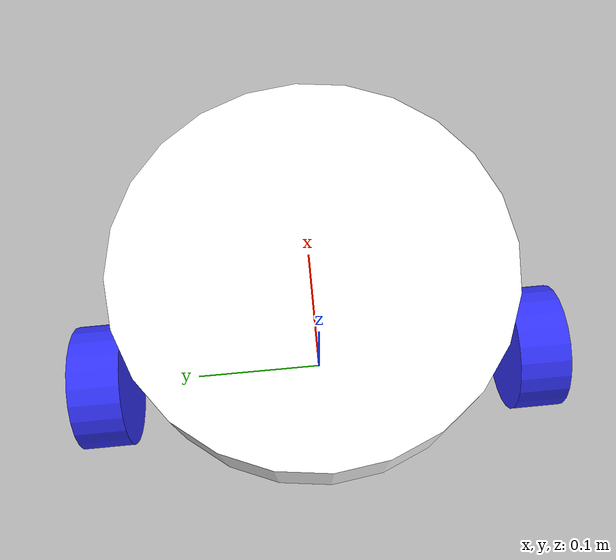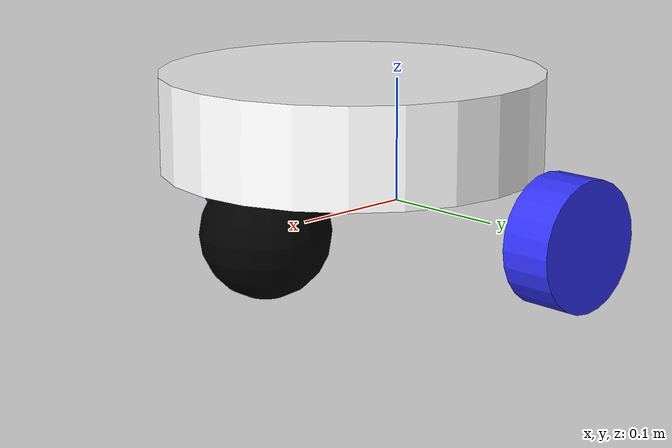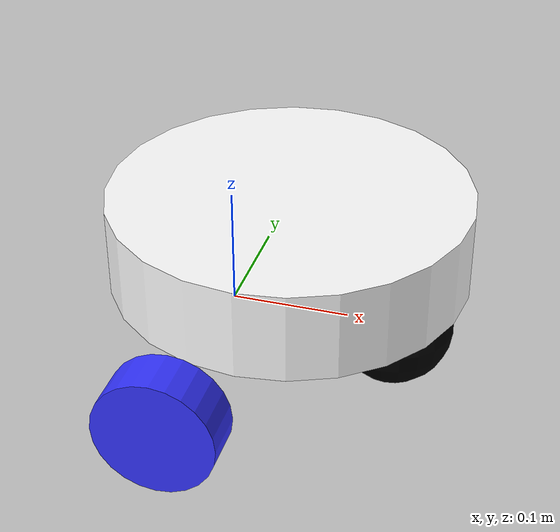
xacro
<?xml version="1.0"?>
<!-- Revolute-Revolute Manipulator -->
<!--
Copied and modified from ROS1 example -
https://github.com/ros-simulation/gazebo_ros_demos/blob/kinetic-devel/rrbot_description/urdf/rrbot.xacro
-->
<robot xmlns:xacro="http://www.ros.org/wiki/xacro" name="2dof_robot">
  <xacro:arg name="prefix" default="" />
  <xacro:arg name="use_gazebo" default="false" />

  <!-- Import RRBot macro -->

  <!-- Import Rviz colors -->

  <xacro:include filename="$(find vacuum_robot)/core/robot_core.xacro" />

  <!-- Import RRBot ros2_control description -->
  <xacro:include filename="$(find vacuum_robot)/ros2_control/rrbot.ros2_control.xacro" />

  <!-- Used for fixing robot -->

  <xacro:rrbot_ros2_control
    name="RRBot" prefix="$(arg prefix)" use_gazebo="$(arg use_gazebo)"/>

  <xacro:if value="$(arg use_gazebo)">
    <!-- Import Gazebo Classic definitions + plugin -->
    <xacro:include filename="$(find vacuum_robot)/gazebo/rrbot.gazebo.xacro" />
    <xacro:rrbot_gazebo prefix="$(arg prefix)"/>
  </xacro:if>
</robot>

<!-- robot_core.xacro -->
<robot xmlns:xacro="http://www.ros.org/wiki/xacro">

<xacro:include filename="inertial_macros.xacro"/>

<material name="white">
    <color rgba="1 1 1 1" />
</material>

<material name="orange">
    <color rgba="1 0.3 0.1 1" />
</material>

<material name="blue">
    <color rgba="0.2 0.2 1 1" />
</material>

<material name="black">
    <color rgba="0 0 0 1" />
</material>

<material name="red">
    <color rgba="1 0 0 1" />
</material>

<!-- BASE -->

<link name="base_link">
</link>

<!-- CHASSIS -->

<joint name="chassis_joint" type="fixed">
    <parent link="base_link" />
    <child link="chassis" />
    <origin xyz="-0.1 0 0" />
</joint>

<link name="chassis">
    <visual>
        <origin xyz="0.15 0 0.075"/>
        <geometry>
            <cylinder radius="0.15" length="0.075" />
        </geometry>
        <material name="white" />
    </visual>
        <collision>
        <origin xyz="0.15 0 0.075"/>
        <geometry>
            <cylinder radius="0.15" length="0.075" />
        </geometry>
    </collision>
    <xacro:inertial_cylinder mass="0.5" length="0.075" radius="0.15">
        <origin xyz="0.15 0 0.075" rpy="0 0 0" />
    </xacro:inertial_cylinder>
</link>

<gazebo reference="chassis">
    <material>Gazebo/White</material>
</gazebo>

<!-- LEFT WHEEL -->

<joint name="left_wheel_joint" type="continuous">
    <parent link="base_link"/>
    <child link="left_wheel"/>
    <origin xyz="0 0.175 0" rpy="-${pi/2} 0 0"/>
    <axis xyz="0 0 1"/>
</joint>

<link name="left_wheel">
    <visual>
        <geometry>
            <cylinder radius="0.05" length="0.04"/>
        </geometry>
        <material name="blue"/>
    </visual>
    <collision>
        <geometry>
            <cylinder radius="0.05" length="0.04"/>
        </geometry>
    </collision>
    <xacro:inertial_cylinder mass="0.1" length="0.04" radius="0.05">
        <origin xyz="0 0 0" rpy="0 0 0" />
    </xacro:inertial_cylinder>
</link>

<gazebo reference="left_wheel">
    <material>Gazebo/Blue</material>
</gazebo>

<!-- RIGHT WHEEL -->

<joint name="right_wheel_joint" type="continuous">
    <parent link="base_link"/>
    <child link="right_wheel"/>
    <origin xyz="0 -0.175 0" rpy="${pi/2} 0 0"/>
    <axis xyz="0 0 -1"/>
</joint>

<link name="right_wheel">
    <visual>
        <geometry>
            <cylinder radius="0.05" length="0.04"/>
        </geometry>
        <material name="blue"/>
    </visual>
    <collision>
        <geometry>
            <cylinder radius="0.05" length="0.04"/>
        </geometry>
    </collision>
    <xacro:inertial_cylinder mass="0.1" length="0.04" radius="0.05">
        <origin xyz="0 0 0" rpy="0 0 0" />
    </xacro:inertial_cylinder>
</link>

<gazebo reference="right_wheel">
    <material>Gazebo/Blue</material>
</gazebo>

<!-- CASTER WHEEL -->

<joint name="caster_wheel_joint" type="fixed">
    <parent link="chassis"/>
    <child link="caster_wheel"/>
    <origin xyz="0.24 0 0"/>
</joint>

<link name="caster_wheel">
    <visual>
        <geometry>
            <sphere radius="0.05"/>
        </geometry>
        <material name="black"/>
    </visual>
    <collision>
        <geometry>
            <sphere radius="0.05"/>
        </geometry>
    </collision>
    <xacro:inertial_sphere mass="0.1" radius="0.05">
        <origin xyz="0 0 0" rpy="0 0 0"/>
    </xacro:inertial_sphere>
</link>

<gazebo reference="caster_wheel">
    <material>Gazebo/Black</material>
    <mu1 value="0.0001"/>
    <mu2 value="0.0001"/>
</gazebo>

</robot>
